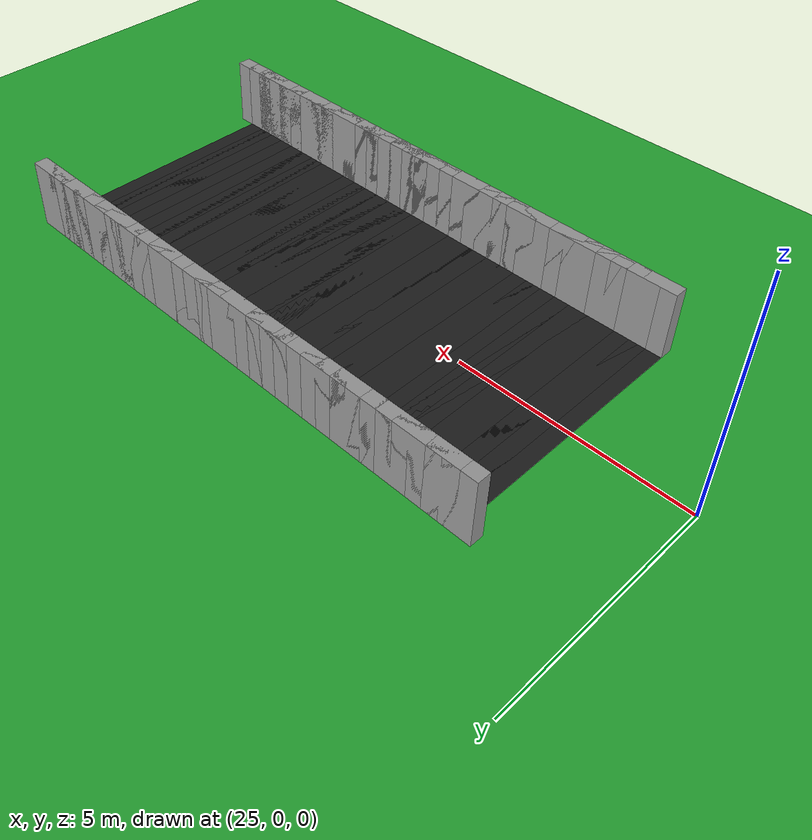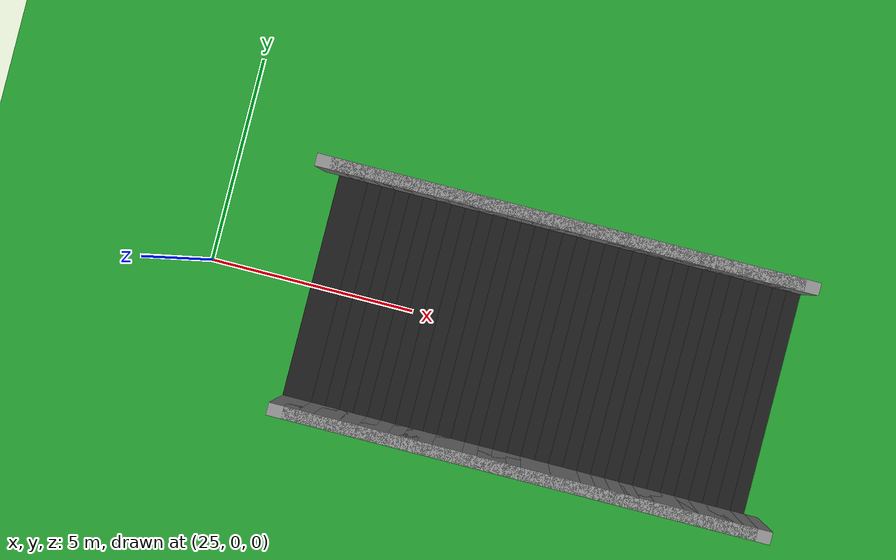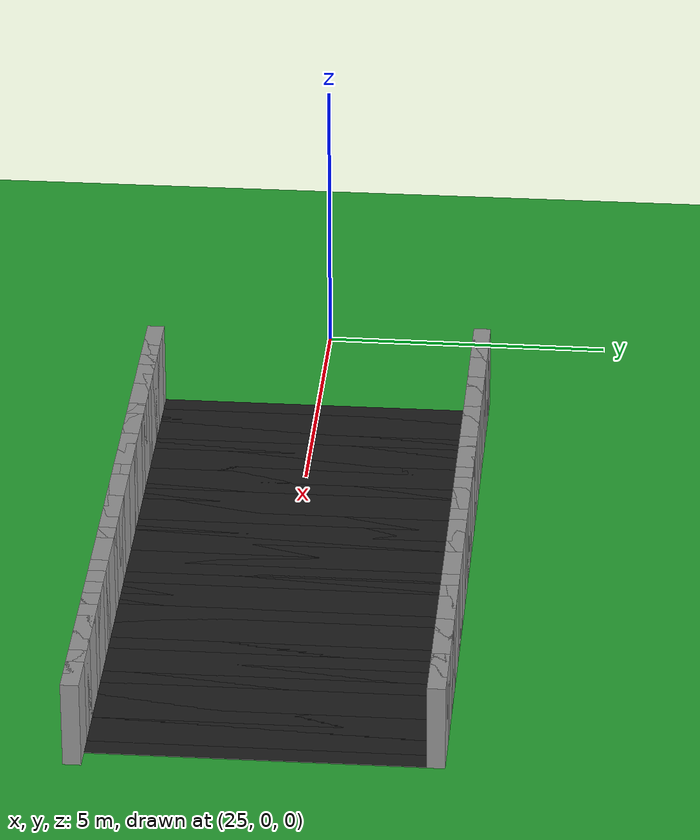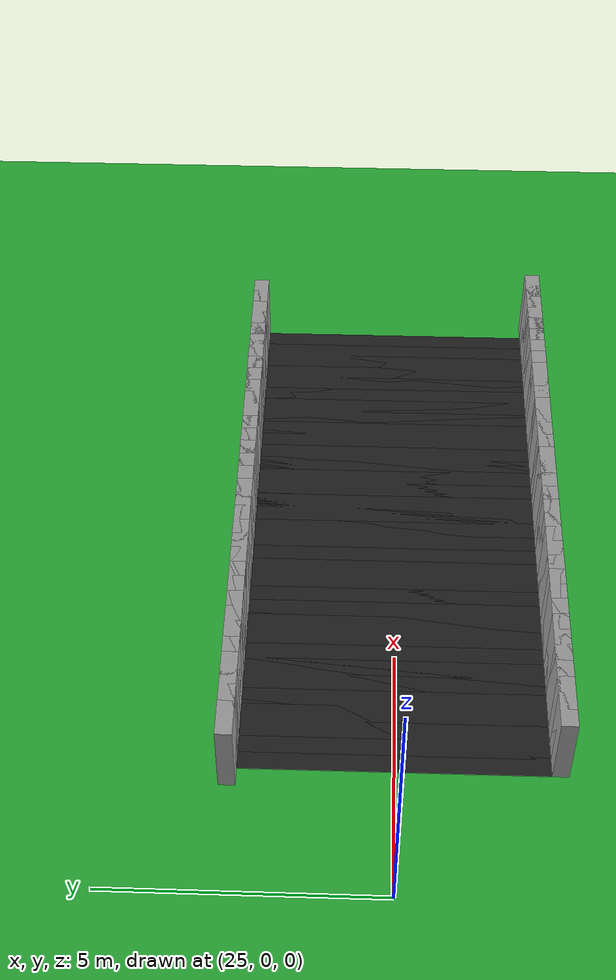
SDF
<sdf version="1.6">
 <world name="loop_speedloop">
  <include><uri>model://sun</uri></include>
  <model name="ground_plane">
   <static>true</static>
   <link name="link">
    <collision name="collision">
     <surface><friction><ode><mu>100</mu><mu2>50</mu2></ode></friction></surface>
     <geometry><plane><normal>0 0 1</normal><size>120 120</size></plane></geometry>
    </collision>
    <visual name="visual">
     <geometry><plane><normal>0 0 1</normal><size>120 120</size></plane></geometry>
     <material>
      <script><uri>file://media/materials/scripts/gazebo.material</uri><name>Gazebo/Green</name></script>
     </material>
    </visual>
   </link>
  </model>
  <model name="curbL_78">
   <static>true</static>
   <pose>27.475 2.900 0.750 0 0 0.00000</pose>
   <link name="link">
    <collision name="collision"><geometry><box><size>0.710 0.300 1.500</size></box></geometry></collision>
    <visual name="visual">
     <geometry><box><size>0.710 0.300 1.500</size></box></geometry>
     <material>
      <script><uri>file://media/materials/scripts/gazebo.material</uri><name>Gazebo/Grey</name></script>
     </material>
    </visual>
   </link>
  </model>
  <model name="asphalt_79">
   <static>true</static>
   <pose>27.825 0.000 0.005 0 0 0.00000</pose>
   <link name="link">
    <visual name="visual">
     <geometry><box><size>0.710 5.500 0.010</size></box></geometry>
     <material>
      <script><uri>file://media/materials/scripts/gazebo.material</uri><name>Gazebo/Black</name></script>
     </material>
    </visual>
   </link>
  </model>
  <model name="curbL_79">
   <static>true</static>
   <pose>27.825 2.900 0.750 0 0 0.00000</pose>
   <link name="link">
    <collision name="collision"><geometry><box><size>0.710 0.300 1.500</size></box></geometry></collision>
    <visual name="visual">
     <geometry><box><size>0.710 0.300 1.500</size></box></geometry>
     <material>
      <script><uri>file://media/materials/scripts/gazebo.material</uri><name>Gazebo/Grey</name></script>
     </material>
    </visual>
   </link>
  </model>
  <model name="curbR_79">
   <static>true</static>
   <pose>27.825 -2.900 0.750 0 0 0.00000</pose>
   <link name="link">
    <collision name="collision"><geometry><box><size>0.710 0.300 1.500</size></box></geometry></collision>
    <visual name="visual">
     <geometry><box><size>0.710 0.300 1.500</size></box></geometry>
     <material>
      <script><uri>file://media/materials/scripts/gazebo.material</uri><name>Gazebo/Grey</name></script>
     </material>
    </visual>
   </link>
  </model>
  <model name="asphalt_80">
   <static>true</static>
   <pose>28.175 0.000 0.005 0 0 0.00000</pose>
   <link name="link">
    <visual name="visual">
     <geometry><box><size>0.710 5.500 0.010</size></box></geometry>
     <material>
      <script><uri>file://media/materials/scripts/gazebo.material</uri><name>Gazebo/Black</name></script>
     </material>
    </visual>
   </link>
  </model>
  <model name="curbL_80">
   <static>true</static>
   <pose>28.175 2.900 0.750 0 0 0.00000</pose>
   <link name="link">
    <collision name="collision"><geometry><box><size>0.710 0.300 1.500</size></box></geometry></collision>
    <visual name="visual">
     <geometry><box><size>0.710 0.300 1.500</size></box></geometry>
     <material>
      <script><uri>file://media/materials/scripts/gazebo.material</uri><name>Gazebo/Grey</name></script>
     </material>
    </visual>
   </link>
  </model>
  <model name="curbR_80">
   <static>true</static>
   <pose>28.175 -2.900 0.750 0 0 0.00000</pose>
   <link name="link">
    <collision name="collision"><geometry><box><size>0.710 0.300 1.500</size></box></geometry></collision>
    <visual name="visual">
     <geometry><box><size>0.710 0.300 1.500</size></box></geometry>
     <material>
      <script><uri>file://media/materials/scripts/gazebo.material</uri><name>Gazebo/Grey</name></script>
     </material>
    </visual>
   </link>
  </model>
  <model name="asphalt_81">
   <static>true</static>
   <pose>28.525 0.000 0.005 0 0 0.00000</pose>
   <link name="link">
    <visual name="visual">
     <geometry><box><size>0.710 5.500 0.010</size></box></geometry>
     <material>
      <script><uri>file://media/materials/scripts/gazebo.material</uri><name>Gazebo/Black</name></script>
     </material>
    </visual>
   </link>
  </model>
  <model name="curbL_81">
   <static>true</static>
   <pose>28.525 2.900 0.750 0 0 0.00000</pose>
   <link name="link">
    <collision name="collision"><geometry><box><size>0.710 0.300 1.500</size></box></geometry></collision>
    <visual name="visual">
     <geometry><box><size>0.710 0.300 1.500</size></box></geometry>
     <material>
      <script><uri>file://media/materials/scripts/gazebo.material</uri><name>Gazebo/Grey</name></script>
     </material>
    </visual>
   </link>
  </model>
  <model name="curbR_81">
   <static>true</static>
   <pose>28.525 -2.900 0.750 0 0 0.00000</pose>
   <link name="link">
    <collision name="collision"><geometry><box><size>0.710 0.300 1.500</size></box></geometry></collision>
    <visual name="visual">
     <geometry><box><size>0.710 0.300 1.500</size></box></geometry>
     <material>
      <script><uri>file://media/materials/scripts/gazebo.material</uri><name>Gazebo/Grey</name></script>
     </material>
    </visual>
   </link>
  </model>
  <model name="asphalt_82">
   <static>true</static>
   <pose>28.875 0.000 0.005 0 0 0.00000</pose>
   <link name="link">
    <visual name="visual">
     <geometry><box><size>0.710 5.500 0.010</size></box></geometry>
     <material>
      <script><uri>file://media/materials/scripts/gazebo.material</uri><name>Gazebo/Black</name></script>
     </material>
    </visual>
   </link>
  </model>
  <model name="curbL_82">
   <static>true</static>
   <pose>28.875 2.900 0.750 0 0 0.00000</pose>
   <link name="link">
    <collision name="collision"><geometry><box><size>0.710 0.300 1.500</size></box></geometry></collision>
    <visual name="visual">
     <geometry><box><size>0.710 0.300 1.500</size></box></geometry>
     <material>
      <script><uri>file://media/materials/scripts/gazebo.material</uri><name>Gazebo/Grey</name></script>
     </material>
    </visual>
   </link>
  </model>
  <model name="curbR_82">
   <static>true</static>
   <pose>28.875 -2.900 0.750 0 0 0.00000</pose>
   <link name="link">
    <collision name="collision"><geometry><box><size>0.710 0.300 1.500</size></box></geometry></collision>
    <visual name="visual">
     <geometry><box><size>0.710 0.300 1.500</size></box></geometry>
     <material>
      <script><uri>file://media/materials/scripts/gazebo.material</uri><name>Gazebo/Grey</name></script>
     </material>
    </visual>
   </link>
  </model>
  <model name="asphalt_83">
   <static>true</static>
   <pose>29.225 0.000 0.005 0 0 0.00000</pose>
   <link name="link">
    <visual name="visual">
     <geometry><box><size>0.710 5.500 0.010</size></box></geometry>
     <material>
      <script><uri>file://media/materials/scripts/gazebo.material</uri><name>Gazebo/Black</name></script>
     </material>
    </visual>
   </link>
  </model>
  <model name="curbL_83">
   <static>true</static>
   <pose>29.225 2.900 0.750 0 0 0.00000</pose>
   <link name="link">
    <collision name="collision"><geometry><box><size>0.710 0.300 1.500</size></box></geometry></collision>
    <visual name="visual">
     <geometry><box><size>0.710 0.300 1.500</size></box></geometry>
     <material>
      <script><uri>file://media/materials/scripts/gazebo.material</uri><name>Gazebo/Grey</name></script>
     </material>
    </visual>
   </link>
  </model>
  <model name="curbR_83">
   <static>true</static>
   <pose>29.225 -2.900 0.750 0 0 0.00000</pose>
   <link name="link">
    <collision name="collision"><geometry><box><size>0.710 0.300 1.500</size></box></geometry></collision>
    <visual name="visual">
     <geometry><box><size>0.710 0.300 1.500</size></box></geometry>
     <material>
      <script><uri>file://media/materials/scripts/gazebo.material</uri><name>Gazebo/Grey</name></script>
     </material>
    </visual>
   </link>
  </model>
  <model name="asphalt_84">
   <static>true</static>
   <pose>29.575 0.000 0.005 0 0 0.00000</pose>
   <link name="link">
    <visual name="visual">
     <geometry><box><size>0.710 5.500 0.010</size></box></geometry>
     <material>
      <script><uri>file://media/materials/scripts/gazebo.material</uri><name>Gazebo/Black</name></script>
     </material>
    </visual>
   </link>
  </model>
  <model name="curbL_84">
   <static>true</static>
   <pose>29.575 2.900 0.750 0 0 0.00000</pose>
   <link name="link">
    <collision name="collision"><geometry><box><size>0.710 0.300 1.500</size></box></geometry></collision>
    <visual name="visual">
     <geometry><box><size>0.710 0.300 1.500</size></box></geometry>
     <material>
      <script><uri>file://media/materials/scripts/gazebo.material</uri><name>Gazebo/Grey</name></script>
     </material>
    </visual>
   </link>
  </model>
  <model name="curbR_84">
   <static>true</static>
   <pose>29.575 -2.900 0.750 0 0 0.00000</pose>
   <link name="link">
    <collision name="collision"><geometry><box><size>0.710 0.300 1.500</size></box></geometry></collision>
    <visual name="visual">
     <geometry><box><size>0.710 0.300 1.500</size></box></geometry>
     <material>
      <script><uri>file://media/materials/scripts/gazebo.material</uri><name>Gazebo/Grey</name></script>
     </material>
    </visual>
   </link>
  </model>
  <model name="asphalt_85">
   <static>true</static>
   <pose>29.925 0.000 0.005 0 0 0.00000</pose>
   <link name="link">
    <visual name="visual">
     <geometry><box><size>0.710 5.500 0.010</size></box></geometry>
     <material>
      <script><uri>file://media/materials/scripts/gazebo.material</uri><name>Gazebo/Black</name></script>
     </material>
    </visual>
   </link>
  </model>
  <model name="curbL_85">
   <static>true</static>
   <pose>29.925 2.900 0.750 0 0 0.00000</pose>
   <link name="link">
    <collision name="collision"><geometry><box><size>0.710 0.300 1.500</size></box></geometry></collision>
    <visual name="visual">
     <geometry><box><size>0.710 0.300 1.500</size></box></geometry>
     <material>
      <script><uri>file://media/materials/scripts/gazebo.material</uri><name>Gazebo/Grey</name></script>
     </material>
    </visual>
   </link>
  </model>
  <model name="curbR_85">
   <static>true</static>
   <pose>29.925 -2.900 0.750 0 0 0.00000</pose>
   <link name="link">
    <collision name="collision"><geometry><box><size>0.710 0.300 1.500</size></box></geometry></collision>
    <visual name="visual">
     <geometry><box><size>0.710 0.300 1.500</size></box></geometry>
     <material>
      <script><uri>file://media/materials/scripts/gazebo.material</uri><name>Gazebo/Grey</name></script>
     </material>
    </visual>
   </link>
  </model>
  <model name="asphalt_86">
   <static>true</static>
   <pose>30.275 0.000 0.005 0 0 0.00000</pose>
   <link name="link">
    <visual name="visual">
     <geometry><box><size>0.710 5.500 0.010</size></box></geometry>
     <material>
      <script><uri>file://media/materials/scripts/gazebo.material</uri><name>Gazebo/Black</name></script>
     </material>
    </visual>
   </link>
  </model>
  <model name="curbL_86">
   <static>true</static>
   <pose>30.275 2.900 0.750 0 0 0.00000</pose>
   <link name="link">
    <collision name="collision"><geometry><box><size>0.710 0.300 1.500</size></box></geometry></collision>
    <visual name="visual">
     <geometry><box><size>0.710 0.300 1.500</size></box></geometry>
     <material>
      <script><uri>file://media/materials/scripts/gazebo.material</uri><name>Gazebo/Grey</name></script>
     </material>
    </visual>
   </link>
  </model>
  <model name="curbR_86">
   <static>true</static>
   <pose>30.275 -2.900 0.750 0 0 0.00000</pose>
   <link name="link">
    <collision name="collision"><geometry><box><size>0.710 0.300 1.500</size></box></geometry></collision>
    <visual name="visual">
     <geometry><box><size>0.710 0.300 1.500</size></box></geometry>
     <material>
      <script><uri>file://media/materials/scripts/gazebo.material</uri><name>Gazebo/Grey</name></script>
     </material>
    </visual>
   </link>
  </model>
  <model name="asphalt_87">
   <static>true</static>
   <pose>30.625 0.000 0.005 0 0 0.00000</pose>
   <link name="link">
    <visual name="visual">
     <geometry><box><size>0.710 5.500 0.010</size></box></geometry>
     <material>
      <script><uri>file://media/materials/scripts/gazebo.material</uri><name>Gazebo/Black</name></script>
     </material>
    </visual>
   </link>
  </model>
  <model name="curbL_87">
   <static>true</static>
   <pose>30.625 2.900 0.750 0 0 0.00000</pose>
   <link name="link">
    <collision name="collision"><geometry><box><size>0.710 0.300 1.500</size></box></geometry></collision>
    <visual name="visual">
     <geometry><box><size>0.710 0.300 1.500</size></box></geometry>
     <material>
      <script><uri>file://media/materials/scripts/gazebo.material</uri><name>Gazebo/Grey</name></script>
     </material>
    </visual>
   </link>
  </model>
  <model name="curbR_87">
   <static>true</static>
   <pose>30.625 -2.900 0.750 0 0 0.00000</pose>
   <link name="link">
    <collision name="collision"><geometry><box><size>0.710 0.300 1.500</size></box></geometry></collision>
    <visual name="visual">
     <geometry><box><size>0.710 0.300 1.500</size></box></geometry>
     <material>
      <script><uri>file://media/materials/scripts/gazebo.material</uri><name>Gazebo/Grey</name></script>
     </material>
    </visual>
   </link>
  </model>
  <model name="asphalt_88">
   <static>true</static>
   <pose>30.975 0.000 0.005 0 0 0.00000</pose>
   <link name="link">
    <visual name="visual">
     <geometry><box><size>0.710 5.500 0.010</size></box></geometry>
     <material>
      <script><uri>file://media/materials/scripts/gazebo.material</uri><name>Gazebo/Black</name></script>
     </material>
    </visual>
   </link>
  </model>
  <model name="curbL_88">
   <static>true</static>
   <pose>30.975 2.900 0.750 0 0 0.00000</pose>
   <link name="link">
    <collision name="collision"><geometry><box><size>0.710 0.300 1.500</size></box></geometry></collision>
    <visual name="visual">
     <geometry><box><size>0.710 0.300 1.500</size></box></geometry>
     <material>
      <script><uri>file://media/materials/scripts/gazebo.material</uri><name>Gazebo/Grey</name></script>
     </material>
    </visual>
   </link>
  </model>
  <model name="curbR_88">
   <static>true</static>
   <pose>30.975 -2.900 0.750 0 0 0.00000</pose>
   <link name="link">
    <collision name="collision"><geometry><box><size>0.710 0.300 1.500</size></box></geometry></collision>
    <visual name="visual">
     <geometry><box><size>0.710 0.300 1.500</size></box></geometry>
     <material>
      <script><uri>file://media/materials/scripts/gazebo.material</uri><name>Gazebo/Grey</name></script>
     </material>
    </visual>
   </link>
  </model>
  <model name="asphalt_89">
   <static>true</static>
   <pose>31.325 0.000 0.005 0 0 0.00000</pose>
   <link name="link">
    <visual name="visual">
     <geometry><box><size>0.710 5.500 0.010</size></box></geometry>
     <material>
      <script><uri>file://media/materials/scripts/gazebo.material</uri><name>Gazebo/Black</name></script>
     </material>
    </visual>
   </link>
  </model>
  <model name="curbL_89">
   <static>true</static>
   <pose>31.325 2.900 0.750 0 0 0.00000</pose>
   <link name="link">
    <collision name="collision"><geometry><box><size>0.710 0.300 1.500</size></box></geometry></collision>
    <visual name="visual">
     <geometry><box><size>0.710 0.300 1.500</size></box></geometry>
     <material>
      <script><uri>file://media/materials/scripts/gazebo.material</uri><name>Gazebo/Grey</name></script>
     </material>
    </visual>
   </link>
  </model>
  <model name="curbR_89">
   <static>true</static>
   <pose>31.325 -2.900 0.750 0 0 0.00000</pose>
   <link name="link">
    <collision name="collision"><geometry><box><size>0.710 0.300 1.500</size></box></geometry></collision>
    <visual name="visual">
     <geometry><box><size>0.710 0.300 1.500</size></box></geometry>
     <material>
      <script><uri>file://media/materials/scripts/gazebo.material</uri><name>Gazebo/Grey</name></script>
     </material>
    </visual>
   </link>
  </model>
  <model name="asphalt_90">
   <static>true</static>
   <pose>31.675 0.000 0.005 0 0 0.00000</pose>
   <link name="link">
    <visual name="visual">
     <geometry><box><size>0.710 5.500 0.010</size></box></geometry>
     <material>
      <script><uri>file://media/materials/scripts/gazebo.material</uri><name>Gazebo/Black</name></script>
     </material>
    </visual>
   </link>
  </model>
  <model name="curbL_90">
   <static>true</static>
   <pose>31.675 2.900 0.750 0 0 0.00000</pose>
   <link name="link">
    <collision name="collision"><geometry><box><size>0.710 0.300 1.500</size></box></geometry></collision>
    <visual name="visual">
     <geometry><box><size>0.710 0.300 1.500</size></box></geometry>
     <material>
      <script><uri>file://media/materials/scripts/gazebo.material</uri><name>Gazebo/Grey</name></script>
     </material>
    </visual>
   </link>
  </model>
  <model name="curbR_90">
   <static>true</static>
   <pose>31.675 -2.900 0.750 0 0 0.00000</pose>
   <link name="link">
    <collision name="collision"><geometry><box><size>0.710 0.300 1.500</size></box></geometry></collision>
    <visual name="visual">
     <geometry><box><size>0.710 0.300 1.500</size></box></geometry>
     <material>
      <script><uri>file://media/materials/scripts/gazebo.material</uri><name>Gazebo/Grey</name></script>
     </material>
    </visual>
   </link>
  </model>
  <model name="asphalt_91">
   <static>true</static>
   <pose>32.025 0.000 0.005 0 0 0.00000</pose>
   <link name="link">
    <visual name="visual">
     <geometry><box><size>0.710 5.500 0.010</size></box></geometry>
     <material>
      <script><uri>file://media/materials/scripts/gazebo.material</uri><name>Gazebo/Black</name></script>
     </material>
    </visual>
   </link>
  </model>
  <model name="curbL_91">
   <static>true</static>
   <pose>32.025 2.900 0.750 0 0 0.00000</pose>
   <link name="link">
    <collision name="collision"><geometry><box><size>0.710 0.300 1.500</size></box></geometry></collision>
    <visual name="visual">
     <geometry><box><size>0.710 0.300 1.500</size></box></geometry>
     <material>
      <script><uri>file://media/materials/scripts/gazebo.material</uri><name>Gazebo/Grey</name></script>
     </material>
    </visual>
   </link>
  </model>
  <model name="curbR_91">
   <static>true</static>
   <pose>32.025 -2.900 0.750 0 0 0.00000</pose>
   <link name="link">
    <collision name="collision"><geometry><box><size>0.710 0.300 1.500</size></box></geometry></collision>
    <visual name="visual">
     <geometry><box><size>0.710 0.300 1.500</size></box></geometry>
     <material>
      <script><uri>file://media/materials/scripts/gazebo.material</uri><name>Gazebo/Grey</name></script>
     </material>
    </visual>
   </link>
  </model>
  <model name="asphalt_92">
   <static>true</static>
   <pose>32.375 0.000 0.005 0 0 0.00000</pose>
   <link name="link">
    <visual name="visual">
     <geometry><box><size>0.710 5.500 0.010</size></box></geometry>
     <material>
      <script><uri>file://media/materials/scripts/gazebo.material</uri><name>Gazebo/Black</name></script>
     </material>
    </visual>
   </link>
  </model>
  <model name="curbL_92">
   <static>true</static>
   <pose>32.375 2.900 0.750 0 0 0.00000</pose>
   <link name="link">
    <collision name="collision"><geometry><box><size>0.710 0.300 1.500</size></box></geometry></collision>
    <visual name="visual">
     <geometry><box><size>0.710 0.300 1.500</size></box></geometry>
     <material>
      <script><uri>file://media/materials/scripts/gazebo.material</uri><name>Gazebo/Grey</name></script>
     </material>
    </visual>
   </link>
  </model>
  <model name="curbR_92">
   <static>true</static>
   <pose>32.375 -2.900 0.750 0 0 0.00000</pose>
   <link name="link">
    <collision name="collision"><geometry><box><size>0.710 0.300 1.500</size></box></geometry></collision>
    <visual name="visual">
     <geometry><box><size>0.710 0.300 1.500</size></box></geometry>
     <material>
      <script><uri>file://media/materials/scripts/gazebo.material</uri><name>Gazebo/Grey</name></script>
     </material>
    </visual>
   </link>
  </model>
  <model name="asphalt_93">
   <static>true</static>
   <pose>32.725 0.000 0.005 0 0 0.00000</pose>
   <link name="link">
    <visual name="visual">
     <geometry><box><size>0.710 5.500 0.010</size></box></geometry>
     <material>
      <script><uri>file://media/materials/scripts/gazebo.material</uri><name>Gazebo/Black</name></script>
     </material>
    </visual>
   </link>
  </model>
  <model name="curbL_93">
   <static>true</static>
   <pose>32.725 2.900 0.750 0 0 0.00000</pose>
   <link name="link">
    <collision name="collision"><geometry><box><size>0.710 0.300 1.500</size></box></geometry></collision>
    <visual name="visual">
     <geometry><box><size>0.710 0.300 1.500</size></box></geometry>
     <material>
      <script><uri>file://media/materials/scripts/gazebo.material</uri><name>Gazebo/Grey</name></script>
     </material>
    </visual>
   </link>
  </model>
  <model name="curbR_93">
   <static>true</static>
   <pose>32.725 -2.900 0.750 0 0 0.00000</pose>
   <link name="link">
    <collision name="collision"><geometry><box><size>0.710 0.300 1.500</size></box></geometry></collision>
    <visual name="visual">
     <geometry><box><size>0.710 0.300 1.500</size></box></geometry>
     <material>
      <script><uri>file://media/materials/scripts/gazebo.material</uri><name>Gazebo/Grey</name></script>
     </material>
    </visual>
   </link>
  </model>
  <model name="asphalt_94">
   <static>true</static>
   <pose>33.075 0.000 0.005 0 0 0.00000</pose>
   <link name="link">
    <visual name="visual">
     <geometry><box><size>0.710 5.500 0.010</size></box></geometry>
     <material>
      <script><uri>file://media/materials/scripts/gazebo.material</uri><name>Gazebo/Black</name></script>
     </material>
    </visual>
   </link>
  </model>
  <model name="curbL_94">
   <static>true</static>
   <pose>33.075 2.900 0.750 0 0 0.00000</pose>
   <link name="link">
    <collision name="collision"><geometry><box><size>0.710 0.300 1.500</size></box></geometry></collision>
    <visual name="visual">
     <geometry><box><size>0.710 0.300 1.500</size></box></geometry>
     <material>
      <script><uri>file://media/materials/scripts/gazebo.material</uri><name>Gazebo/Grey</name></script>
     </material>
    </visual>
   </link>
  </model>
  <model name="curbR_94">
   <static>true</static>
   <pose>33.075 -2.900 0.750 0 0 0.00000</pose>
   <link name="link">
    <collision name="collision"><geometry><box><size>0.710 0.300 1.500</size></box></geometry></collision>
    <visual name="visual">
     <geometry><box><size>0.710 0.300 1.500</size></box></geometry>
     <material>
      <script><uri>file://media/materials/scripts/gazebo.material</uri><name>Gazebo/Grey</name></script>
     </material>
    </visual>
   </link>
  </model>
  <model name="asphalt_95">
   <static>true</static>
   <pose>33.425 0.000 0.005 0 0 0.00000</pose>
   <link name="link">
    <visual name="visual">
     <geometry><box><size>0.710 5.500 0.010</size></box></geometry>
     <material>
      <script><uri>file://media/materials/scripts/gazebo.material</uri><name>Gazebo/Black</name></script>
     </material>
    </visual>
   </link>
  </model>
  <model name="curbL_95">
   <static>true</static>
   <pose>33.425 2.900 0.750 0 0 0.00000</pose>
   <link name="link">
    <collision name="collision"><geometry><box><size>0.710 0.300 1.500</size></box></geometry></collision>
    <visual name="visual">
     <geometry><box><size>0.710 0.300 1.500</size></box></geometry>
     <material>
      <script><uri>file://media/materials/scripts/gazebo.material</uri><name>Gazebo/Grey</name></script>
     </material>
    </visual>
   </link>
  </model>
  <model name="curbR_95">
   <static>true</static>
   <pose>33.425 -2.900 0.750 0 0 0.00000</pose>
   <link name="link">
    <collision name="collision"><geometry><box><size>0.710 0.300 1.500</size></box></geometry></collision>
    <visual name="visual">
     <geometry><box><size>0.710 0.300 1.500</size></box></geometry>
     <material>
      <script><uri>file://media/materials/scripts/gazebo.material</uri><name>Gazebo/Grey</name></script>
     </material>
    </visual>
   </link>
  </model>
  <model name="asphalt_96">
   <static>true</static>
   <pose>33.775 0.000 0.005 0 0 0.00000</pose>
   <link name="link">
    <visual name="visual">
     <geometry><box><size>0.710 5.500 0.010</size></box></geometry>
     <material>
      <script><uri>file://media/materials/scripts/gazebo.material</uri><name>Gazebo/Black</name></script>
     </material>
    </visual>
   </link>
  </model>
  <model name="curbL_96">
   <static>true</static>
   <pose>33.775 2.900 0.750 0 0 0.00000</pose>
   <link name="link">
    <collision name="collision"><geometry><box><size>0.710 0.300 1.500</size></box></geometry></collision>
    <visual name="visual">
     <geometry><box><size>0.710 0.300 1.500</size></box></geometry>
     <material>
      <script><uri>file://media/materials/scripts/gazebo.material</uri><name>Gazebo/Grey</name></script>
     </material>
    </visual>
   </link>
  </model>
  <model name="curbR_96">
   <static>true</static>
   <pose>33.775 -2.900 0.750 0 0 0.00000</pose>
   <link name="link">
    <collision name="collision"><geometry><box><size>0.710 0.300 1.500</size></box></geometry></collision>
    <visual name="visual">
     <geometry><box><size>0.710 0.300 1.500</size></box></geometry>
     <material>
      <script><uri>file://media/materials/scripts/gazebo.material</uri><name>Gazebo/Grey</name></script>
     </material>
    </visual>
   </link>
  </model>
  <model name="asphalt_97">
   <static>true</static>
   <pose>34.125 0.000 0.005 0 0 0.00000</pose>
   <link name="link">
    <visual name="visual">
     <geometry><box><size>0.710 5.500 0.010</size></box></geometry>
     <material>
      <script><uri>file://media/materials/scripts/gazebo.material</uri><name>Gazebo/Black</name></script>
     </material>
    </visual>
   </link>
  </model>
  <model name="curbL_97">
   <static>true</static>
   <pose>34.125 2.900 0.750 0 0 0.00000</pose>
   <link name="link">
    <collision name="collision"><geometry><box><size>0.710 0.300 1.500</size></box></geometry></collision>
    <visual name="visual">
     <geometry><box><size>0.710 0.300 1.500</size></box></geometry>
     <material>
      <script><uri>file://media/materials/scripts/gazebo.material</uri><name>Gazebo/Grey</name></script>
     </material>
    </visual>
   </link>
  </model>
  <model name="curbR_97">
   <static>true</static>
   <pose>34.125 -2.900 0.750 0 0 0.00000</pose>
   <link name="link">
    <collision name="collision"><geometry><box><size>0.710 0.300 1.500</size></box></geometry></collision>
    <visual name="visual">
     <geometry><box><size>0.710 0.300 1.500</size></box></geometry>
     <material>
      <script><uri>file://media/materials/scripts/gazebo.material</uri><name>Gazebo/Grey</name></script>
     </material>
    </visual>
   </link>
  </model>
  <model name="asphalt_98">
   <static>true</static>
   <pose>34.475 0.000 0.005 0 0 0.00000</pose>
   <link name="link">
    <visual name="visual">
     <geometry><box><size>0.710 5.500 0.010</size></box></geometry>
     <material>
      <script><uri>file://media/materials/scripts/gazebo.material</uri><name>Gazebo/Black</name></script>
     </material>
    </visual>
   </link>
  </model>
  <model name="curbL_98">
   <static>true</static>
   <pose>34.475 2.900 0.750 0 0 0.00000</pose>
   <link name="link">
    <collision name="collision"><geometry><box><size>0.710 0.300 1.500</size></box></geometry></collision>
    <visual name="visual">
     <geometry><box><size>0.710 0.300 1.500</size></box></geometry>
     <material>
      <script><uri>file://media/materials/scripts/gazebo.material</uri><name>Gazebo/Grey</name></script>
     </material>
    </visual>
   </link>
  </model>
  <model name="curbR_98">
   <static>true</static>
   <pose>34.475 -2.900 0.750 0 0 0.00000</pose>
   <link name="link">
    <collision name="collision"><geometry><box><size>0.710 0.300 1.500</size></box></geometry></collision>
    <visual name="visual">
     <geometry><box><size>0.710 0.300 1.500</size></box></geometry>
     <material>
      <script><uri>file://media/materials/scripts/gazebo.material</uri><name>Gazebo/Grey</name></script>
     </material>
    </visual>
   </link>
  </model>
  <model name="asphalt_99">
   <static>true</static>
   <pose>34.825 0.000 0.005 0 0 0.00000</pose>
   <link name="link">
    <visual name="visual">
     <geometry><box><size>0.710 5.500 0.010</size></box></geometry>
     <material>
      <script><uri>file://media/materials/scripts/gazebo.material</uri><name>Gazebo/Black</name></script>
     </material>
    </visual>
   </link>
  </model>
  <model name="curbL_99">
   <static>true</static>
   <pose>34.825 2.900 0.750 0 0 0.00000</pose>
   <link name="link">
    <collision name="collision"><geometry><box><size>0.710 0.300 1.500</size></box></geometry></collision>
    <visual name="visual">
     <geometry><box><size>0.710 0.300 1.500</size></box></geometry>
     <material>
      <script><uri>file://media/materials/scripts/gazebo.material</uri><name>Gazebo/Grey</name></script>
     </material>
    </visual>
   </link>
  </model>
  <model name="curbR_99">
   <static>true</static>
   <pose>34.825 -2.900 0.750 0 0 0.00000</pose>
   <link name="link">
    <collision name="collision"><geometry><box><size>0.710 0.300 1.500</size></box></geometry></collision>
    <visual name="visual">
     <geometry><box><size>0.710 0.300 1.500</size></box></geometry>
     <material>
      <script><uri>file://media/materials/scripts/gazebo.material</uri><name>Gazebo/Grey</name></script>
     </material>
    </visual>
   </link>
  </model>
  <model name="asphalt_100">
   <static>true</static>
   <pose>35.175 0.000 0.005 0 0 0.00000</pose>
   <link name="link">
    <visual name="visual">
     <geometry><box><size>0.710 5.500 0.010</size></box></geometry>
     <material>
      <script><uri>file://media/materials/scripts/gazebo.material</uri><name>Gazebo/Black</name></script>
     </material>
    </visual>
   </link>
  </model>
  <model name="curbL_100">
   <static>true</static>
   <pose>35.175 2.900 0.750 0 0 0.00000</pose>
   <link name="link">
    <collision name="collision"><geometry><box><size>0.710 0.300 1.500</size></box></geometry></collision>
    <visual name="visual">
     <geometry><box><size>0.710 0.300 1.500</size></box></geometry>
     <material>
      <script><uri>file://media/materials/scripts/gazebo.material</uri><name>Gazebo/Grey</name></script>
     </material>
    </visual>
   </link>
  </model>
  <model name="curbR_100">
   <static>true</static>
   <pose>35.175 -2.900 0.750 0 0 0.00000</pose>
   <link name="link">
    <collision name="collision"><geometry><box><size>0.710 0.300 1.500</size></box></geometry></collision>
    <visual name="visual">
     <geometry><box><size>0.710 0.300 1.500</size></box></geometry>
     <material>
      <script><uri>file://media/materials/scripts/gazebo.material</uri><name>Gazebo/Grey</name></script>
     </material>
    </visual>
   </link>
  </model>
  <model name="asphalt_101">
   <static>true</static>
   <pose>35.525 0.000 0.005 0 0 0.00000</pose>
   <link name="link">
    <visual name="visual">
     <geometry><box><size>0.710 5.500 0.010</size></box></geometry>
     <material>
      <script><uri>file://media/materials/scripts/gazebo.material</uri><name>Gazebo/Black</name></script>
     </material>
    </visual>
   </link>
  </model>
  <model name="curbL_101">
   <static>true</static>
   <pose>35.525 2.900 0.750 0 0 0.00000</pose>
   <link name="link">
    <collision name="collision"><geometry><box><size>0.710 0.300 1.500</size></box></geometry></collision>
    <visual name="visual">
     <geometry><box><size>0.710 0.300 1.500</size></box></geometry>
     <material>
      <script><uri>file://media/materials/scripts/gazebo.material</uri><name>Gazebo/Grey</name></script>
     </material>
    </visual>
   </link>
  </model>
  <model name="curbR_101">
   <static>true</static>
   <pose>35.525 -2.900 0.750 0 0 0.00000</pose>
   <link name="link">
    <collision name="collision"><geometry><box><size>0.710 0.300 1.500</size></box></geometry></collision>
    <visual name="visual">
     <geometry><box><size>0.710 0.300 1.500</size></box></geometry>
     <material>
      <script><uri>file://media/materials/scripts/gazebo.material</uri><name>Gazebo/Grey</name></script>
     </material>
    </visual>
   </link>
  </model>
  <model name="asphalt_102">
   <static>true</static>
   <pose>35.875 0.000 0.005 0 0 0.00000</pose>
   <link name="link">
    <visual name="visual">
     <geometry><box><size>0.710 5.500 0.010</size></box></geometry>
     <material>
      <script><uri>file://media/materials/scripts/gazebo.material</uri><name>Gazebo/Black</name></script>
     </material>
    </visual>
   </link>
  </model>
  <model name="curbL_102">
   <static>true</static>
   <pose>35.875 2.900 0.750 0 0 0.00000</pose>
   <link name="link">
    <collision name="collision"><geometry><box><size>0.710 0.300 1.500</size></box></geometry></collision>
    <visual name="visual">
     <geometry><box><size>0.710 0.300 1.500</size></box></geometry>
     <material>
      <script><uri>file://media/materials/scripts/gazebo.material</uri><name>Gazebo/Grey</name></script>
     </material>
    </visual>
   </link>
  </model>
  <model name="curbR_102">
   <static>true</static>
   <pose>35.875 -2.900 0.750 0 0 0.00000</pose>
   <link name="link">
    <collision name="collision"><geometry><box><size>0.710 0.300 1.500</size></box></geometry></collision>
    <visual name="visual">
     <geometry><box><size>0.710 0.300 1.500</size></box></geometry>
     <material>
      <script><uri>file://media/materials/scripts/gazebo.material</uri><name>Gazebo/Grey</name></script>
     </material>
    </visual>
   </link>
  </model>
  <model name="asphalt_103">
   <static>true</static>
   <pose>36.225 0.000 0.005 0 0 0.00000</pose>
   <link name="link">
    <visual name="visual">
     <geometry><box><size>0.710 5.500 0.010</size></box></geometry>
     <material>
      <script><uri>file://media/materials/scripts/gazebo.material</uri><name>Gazebo/Black</name></script>
     </material>
    </visual>
   </link>
  </model>
  <model name="curbL_103">
   <static>true</static>
   <pose>36.225 2.900 0.750 0 0 0.00000</pose>
   <link name="link">
    <collision name="collision"><geometry><box><size>0.710 0.300 1.500</size></box></geometry></collision>
    <visual name="visual">
     <geometry><box><size>0.710 0.300 1.500</size></box></geometry>
     <material>
      <script><uri>file://media/materials/scripts/gazebo.material</uri><name>Gazebo/Grey</name></script>
     </material>
    </visual>
   </link>
  </model>
  <model name="curbR_103">
   <static>true</static>
   <pose>36.225 -2.900 0.750 0 0 0.00000</pose>
   <link name="link">
    <collision name="collision"><geometry><box><size>0.710 0.300 1.500</size></box></geometry></collision>
    <visual name="visual">
     <geometry><box><size>0.710 0.300 1.500</size></box></geometry>
     <material>
      <script><uri>file://media/materials/scripts/gazebo.material</uri><name>Gazebo/Grey</name></script>
     </material>
    </visual>
   </link>
  </model>
  <model name="asphalt_104">
   <static>true</static>
   <pose>36.575 0.000 0.005 0 0 0.00000</pose>
   <link name="link">
    <visual name="visual">
     <geometry><box><size>0.710 5.500 0.010</size></box></geometry>
     <material>
      <script><uri>file://media/materials/scripts/gazebo.material</uri><name>Gazebo/Black</name></script>
     </material>
    </visual>
   </link>
  </model>
  <model name="curbL_104">
   <static>true</static>
   <pose>36.575 2.900 0.750 0 0 0.00000</pose>
   <link name="link">
    <collision name="collision"><geometry><box><size>0.710 0.300 1.500</size></box></geometry></collision>
    <visual name="visual">
     <geometry><box><size>0.710 0.300 1.500</size></box></geometry>
     <material>
      <script><uri>file://media/materials/scripts/gazebo.material</uri><name>Gazebo/Grey</name></script>
     </material>
    </visual>
   </link>
  </model>
  <model name="curbR_104">
   <static>true</static>
   <pose>36.575 -2.900 0.750 0 0 0.00000</pose>
   <link name="link">
    <collision name="collision"><geometry><box><size>0.710 0.300 1.500</size></box></geometry></collision>
    <visual name="visual">
     <geometry><box><size>0.710 0.300 1.500</size></box></geometry>
     <material>
      <script><uri>file://media/materials/scripts/gazebo.material</uri><name>Gazebo/Grey</name></script>
     </material>
    </visual>
   </link>
  </model>
  <model name="asphalt_105">
   <static>true</static>
   <pose>36.925 0.000 0.005 0 0 0.00000</pose>
   <link name="link">
    <visual name="visual">
     <geometry><box><size>0.710 5.500 0.010</size></box></geometry>
     <material>
      <script><uri>file://media/materials/scripts/gazebo.material</uri><name>Gazebo/Black</name></script>
     </material>
    </visual>
   </link>
  </model>
  <model name="curbL_105">
   <static>true</static>
   <pose>36.925 2.900 0.750 0 0 0.00000</pose>
   <link name="link">
    <collision name="collision"><geometry><box><size>0.710 0.300 1.500</size></box></geometry></collision>
    <visual name="visual">
     <geometry><box><size>0.710 0.300 1.500</size></box></geometry>
     <material>
      <script><uri>file://media/materials/scripts/gazebo.material</uri><name>Gazebo/Grey</name></script>
     </material>
    </visual>
   </link>
  </model>
  <model name="curbR_105">
   <static>true</static>
   <pose>36.925 -2.900 0.750 0 0 0.00000</pose>
   <link name="link">
    <collision name="collision"><geometry><box><size>0.710 0.300 1.500</size></box></geometry></collision>
    <visual name="visual">
     <geometry><box><size>0.710 0.300 1.500</size></box></geometry>
     <material>
      <script><uri>file://media/materials/scripts/gazebo.material</uri><name>Gazebo/Grey</name></script>
     </material>
    </visual>
   </link>
  </model>
  <model name="asphalt_106">
   <static>true</static>
   <pose>37.275 0.000 0.005 0 0 0.00000</pose>
   <link name="link">
    <visual name="visual">
     <geometry><box><size>0.710 5.500 0.010</size></box></geometry>
     <material>
      <script><uri>file://media/materials/scripts/gazebo.material</uri><name>Gazebo/Black</name></script>
     </material>
    </visual>
   </link>
  </model>
  <model name="curbL_106">
   <static>true</static>
   <pose>37.275 2.900 0.750 0 0 0.00000</pose>
   <link name="link">
    <collision name="collision"><geometry><box><size>0.710 0.300 1.500</size></box></geometry></collision>
    <visual name="visual">
     <geometry><box><size>0.710 0.300 1.500</size></box></geometry>
     <material>
      <script><uri>file://media/materials/scripts/gazebo.material</uri><name>Gazebo/Grey</name></script>
     </material>
    </visual>
   </link>
  </model>
  <model name="curbR_106">
   <static>true</static>
   <pose>37.275 -2.900 0.750 0 0 0.00000</pose>
   <link name="link">
    <collision name="collision"><geometry><box><size>0.710 0.300 1.500</size></box></geometry></collision>
    <visual name="visual">
     <geometry><box><size>0.710 0.300 1.500</size></box></geometry>
     <material>
      <script><uri>file://media/materials/scripts/gazebo.material</uri><name>Gazebo/Grey</name></script>
     </material>
    </visual>
   </link>
  </model>
  <model name="asphalt_107">
   <static>true</static>
   <pose>37.625 0.000 0.005 0 0 0.00000</pose>
   <link name="link">
    <visual name="visual">
     <geometry><box><size>0.710 5.500 0.010</size></box></geometry>
     <material>
      <script><uri>file://media/materials/scripts/gazebo.material</uri><name>Gazebo/Black</name></script>
     </material>
    </visual>
   </link>
  </model>
  <model name="curbL_107">
   <static>true</static>
   <pose>37.625 2.900 0.750 0 0 0.00000</pose>
   <link name="link">
    <collision name="collision"><geometry><box><size>0.710 0.300 1.500</size></box></geometry></collision>
    <visual name="visual">
     <geometry><box><size>0.710 0.300 1.500</size></box></geometry>
     <material>
      <script><uri>file://media/materials/scripts/gazebo.material</uri><name>Gazebo/Grey</name></script>
     </material>
    </visual>
   </link>
  </model>
  <model name="curbR_107">
   <static>true</static>
   <pose>37.625 -2.900 0.750 0 0 0.00000</pose>
   <link name="link">
    <collision name="collision"><geometry><box><size>0.710 0.300 1.500</size></box></geometry></collision>
    <visual name="visual">
     <geometry><box><size>0.710 0.300 1.500</size></box></geometry>
     <material>
      <script><uri>file://media/materials/scripts/gazebo.material</uri><name>Gazebo/Grey</name></script>
     </material>
    </visual>
   </link>
  </model>
  <model name="asphalt_108">
   <static>true</static>
   <pose>37.975 0.000 0.005 0 0 0.00000</pose>
   <link name="link">
    <visual name="visual">
     <geometry><box><size>0.710 5.500 0.010</size></box></geometry>
     <material>
      <script><uri>file://media/materials/scripts/gazebo.material</uri><name>Gazebo/Black</name></script>
     </material>
    </visual>
   </link>
  </model>
  <model name="curbL_108">
   <static>true</static>
   <pose>37.975 2.900 0.750 0 0 0.00000</pose>
   <link name="link">
    <collision name="collision"><geometry><box><size>0.710 0.300 1.500</size></box></geometry></collision>
    <visual name="visual">
     <geometry><box><size>0.710 0.300 1.500</size></box></geometry>
     <material>
      <script><uri>file://media/materials/scripts/gazebo.material</uri><name>Gazebo/Grey</name></script>
     </material>
    </visual>
   </link>
  </model>
  <model name="curbR_108">
   <static>true</static>
   <pose>37.975 -2.900 0.750 0 0 0.00000</pose>
   <link name="link">
    <collision name="collision"><geometry><box><size>0.710 0.300 1.500</size></box></geometry></collision>
    <visual name="visual">
     <geometry><box><size>0.710 0.300 1.500</size></box></geometry>
     <material>
      <script><uri>file://media/materials/scripts/gazebo.material</uri><name>Gazebo/Grey</name></script>
     </material>
    </visual>
   </link>
  </model>
  <model name="asphalt_109">
   <static>true</static>
   <pose>38.325 0.000 0.005 0 0 0.00000</pose>
   <link name="link">
    <visual name="visual">
     <geometry><box><size>0.710 5.500 0.010</size></box></geometry>
     <material>
      <script><uri>file://media/materials/scripts/gazebo.material</uri><name>Gazebo/Black</name></script>
     </material>
    </visual>
   </link>
  </model>
  <model name="curbL_109">
   <static>true</static>
   <pose>38.325 2.900 0.750 0 0 0.00000</pose>
   <link name="link">
    <collision name="collision"><geometry><box><size>0.710 0.300 1.500</size></box></geometry></collision>
    <visual name="visual">
     <geometry><box><size>0.710 0.300 1.500</size></box></geometry>
     <material>
      <script><uri>file://media/materials/scripts/gazebo.material</uri><name>Gazebo/Grey</name></script>
     </material>
    </visual>
   </link>
  </model>
  <model name="curbR_109">
   <static>true</static>
   <pose>38.325 -2.900 0.750 0 0 0.00000</pose>
   <link name="link">
    <collision name="collision"><geometry><box><size>0.710 0.300 1.500</size></box></geometry></collision>
    <visual name="visual">
     <geometry><box><size>0.710 0.300 1.500</size></box></geometry>
     <material>
      <script><uri>file://media/materials/scripts/gazebo.material</uri><name>Gazebo/Grey</name></script>
     </material>
    </visual>
   </link>
  </model>
  <model name="asphalt_110">
   <static>true</static>
   <pose>38.675 0.000 0.005 0 0 0.00000</pose>
   <link name="link">
    <visual name="visual">
     <geometry><box><size>0.710 5.500 0.010</size></box></geometry>
     <material>
      <script><uri>file://media/materials/scripts/gazebo.material</uri><name>Gazebo/Black</name></script>
     </material>
    </visual>
   </link>
  </model>
  <model name="curbL_110">
   <static>true</static>
   <pose>38.675 2.900 0.750 0 0 0.00000</pose>
   <link name="link">
    <collision name="collision"><geometry><box><size>0.710 0.300 1.500</size></box></geometry></collision>
    <visual name="visual">
     <geometry><box><size>0.710 0.300 1.500</size></box></geometry>
     <material>
      <script><uri>file://media/materials/scripts/gazebo.material</uri><name>Gazebo/Grey</name></script>
     </material>
    </visual>
   </link>
  </model>
  <model name="curbR_110">
   <static>true</static>
   <pose>38.675 -2.900 0.750 0 0 0.00000</pose>
   <link name="link">
    <collision name="collision"><geometry><box><size>0.710 0.300 1.500</size></box></geometry></collision>
    <visual name="visual">
     <geometry><box><size>0.710 0.300 1.500</size></box></geometry>
     <material>
      <script><uri>file://media/materials/scripts/gazebo.material</uri><name>Gazebo/Grey</name></script>
     </material>
    </visual>
   </link>
  </model>
  <model name="curbR_111">
   <static>true</static>
   <pose>39.025 -2.900 0.750 0 0 0.00000</pose>
   <link name="link">
    <collision name="collision"><geometry><box><size>0.710 0.300 1.500</size></box></geometry></collision>
    <visual name="visual">
     <geometry><box><size>0.710 0.300 1.500</size></box></geometry>
     <material>
      <script><uri>file://media/materials/scripts/gazebo.material</uri><name>Gazebo/Grey</name></script>
     </material>
    </visual>
   </link>
  </model>
 </world>
</sdf>
